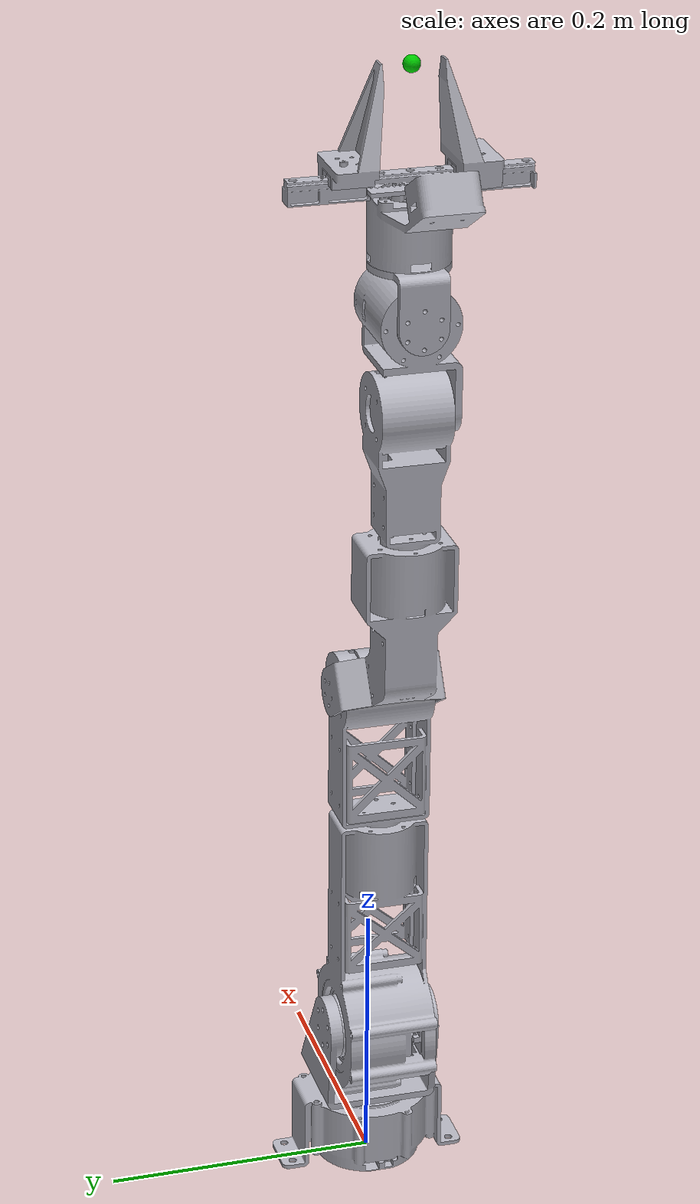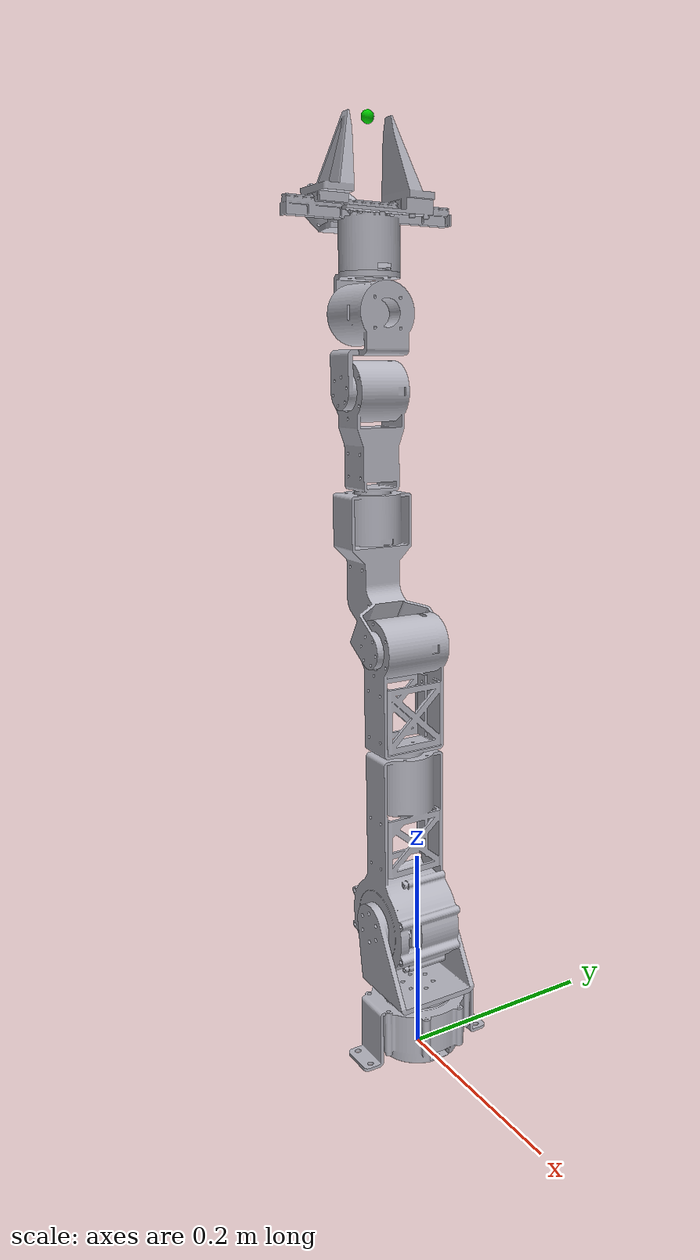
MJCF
<?xml version="1.0" encoding="utf-8"?>
<!-- MJCF model generated from robot.urdf. All distances are in metres and angles in radians. -->
<mujoco model="h1arm_gripper">
  <!-- URDF rpy uses fixed-axis XYZ rotations. -->
  <compiler angle="radian" eulerseq="XYZ" meshdir="meshes"/>
  <option timestep="0.002" gravity="0 0 -9.81" integrator="implicitfast"/>

  <default>
    <joint damping="1" armature="0.01" limited="true"/>
    <geom type="mesh" contype="1" conaffinity="1" friction="0.8 0.01 0.001" rgba="0.72 0.72 0.76 1"/>
    <position forcelimited="true"/>
  </default>

  <asset>
    <mesh name="base_link_mesh" file="base_link.stl"/>
    <mesh name="Link_1_mesh" file="Link_1.stl"/>
    <mesh name="Link_2_mesh" file="Link_2.stl"/>
    <mesh name="Link_3_mesh" file="Link_3.stl"/>
    <mesh name="Link_4_mesh" file="Link_4.stl"/>
    <mesh name="Link_5_mesh" file="Link_5.stl"/>
    <mesh name="Link_6_mesh" file="Link_6.stl"/>
    <mesh name="Link_7_mesh" file="Link_7.stl"/>
    <mesh name="Link_ee_mesh" file="Link_ee.stl"/>
    <mesh name="Link_12_mesh" file="Link_12.stl"/>
    <mesh name="Link_13_mesh" file="Link_13.stl"/>
  </asset>

  <worldbody>
    <body name="base_link">
      <inertial pos="0.0000558 -0.00005184 0.03162308" mass="0.69162878"
                fullinertia="0.0008996 0.00061988 0.00106115 0.00000037 0.0000008 -0.0000044"/>
      <geom mesh="base_link_mesh"/>
      <body name="Link_1" pos="0 -0.00001092 0.0566">
        <joint name="Joint_1" type="hinge" axis="0 0 1" range="-3.14159 3.14159"/>
        <inertial pos="-0.00939786 0.0000704 0.03350522" mass="0.48230711"
                  fullinertia="0.00091496 0.00058896 0.00073282 0.00000048 0.00012968 -0.0000012"/>
        <geom mesh="Link_1_mesh"/>
        <body name="Link_2" pos="-0.0235 0.0325 0.069" euler="-1.57079633 0 0">
          <joint name="Joint_2" type="hinge" axis="0 0 1" range="-1.571 1.571"/>
          <inertial pos="0.00000532 -0.06379929 -0.03408965" mass="1.94611811"
                    fullinertia="0.01118348 0.0017217 0.01120132 0.00000311 0.00000061 0.00019674"/>
          <geom mesh="Link_2_mesh"/>
          <body name="Link_3" pos="-0.00000018 -0.173 -0.03249939" euler="1.57079633 0 0">
            <joint name="Joint_3" type="hinge" axis="0 0 1" range="-3.14159 3.14159"/>
            <inertial pos="-0.00002259 -0.00043766 0.09074299" mass="1.01676546"
                      fullinertia="0.00170773 0.00150816 0.00061728 0.00000044 0.00000039 0.00000773"/>
            <geom mesh="Link_3_mesh"/>
            <body name="Link_4" pos="0 -0.031 0.108" euler="1.57079633 0 0">
              <joint name="Joint_4" type="hinge" axis="0 0 1" range="-3.14159 3.14159"/>
              <inertial pos="-0.05223196 0.08041667 -0.03084671" mass="1.31493568"
                        fullinertia="0.00256753 0.00083187 0.00261887 0.00044865 -0.00000907 0.00001387"/>
              <geom mesh="Link_4_mesh"/>
              <body name="Link_5" pos="-0.0570187 0.13799997 -0.031" euler="-1.57079633 0 0">
                <joint name="Joint_5" type="hinge" axis="0 0 1" range="-3.14159 3.14159"/>
                <inertial pos="-0.00002277 -0.00013572 0.07326344" mass="1.03123423"
                          fullinertia="0.00138155 0.00137365 0.00036176 0.00000043 0.00000058 -0.00001051"/>
                <geom mesh="Link_5_mesh"/>
                <body name="Link_6" pos="0 -0.0235 0.098" euler="1.57079633 0 0">
                  <joint name="Joint_6" type="hinge" axis="0 0 1" range="-3.14159 3.14159"/>
                  <inertial pos="-0.00011233 0.06329954 -0.02121872" mass="0.888259"
                            fullinertia="0.00068987 0.00050599 0.00074389 0.00002087 -0.00000023 0.00010841"/>
                  <geom mesh="Link_6_mesh"/>
                  <body name="Link_7" pos="-0.0325 0.07046661 -0.0235" euler="-1.57079633 0 1.57079633">
                    <joint name="Joint_7" type="hinge" axis="0 0 1" range="-3.14159 3.14159"/>
                    <inertial pos="0.02413322 0 -0.01539933" mass="0.09346317"
                              fullinertia="0.0000561 0.00006109 0.00003789 0 0.00001734 0"/>
                    <geom mesh="Link_7_mesh"/>
                    <body name="Link_ee" pos="0.037 0 -0.0325" euler="-1.57079633 0 -1.57079633">
                      <inertial pos="-0.00003041 0.00463951 -0.10312018" mass="2.29846423"
                                fullinertia="0.06158132 0.05976071 0.00306785 0.00000481 -0.00000279 0.008958"/>
                      <geom mesh="Link_ee_mesh"/>
                      <body name="Link_tool" pos="0 0 0.134" euler="0 -1.57 1.57079633">
                        <site name="tool_center" type="sphere" size="0.006" rgba="0 0.8 0 1"/>
                        <body name="Link_12" pos="-0.06248011 -0.02843143 -0.02504976" euler="1.57 -0.00079633 0">
                          <joint name="gripper1" type="slide" axis="0 0 1" range="-0.021 0.04" damping="5" armature="0.001"/>
                          <inertial pos="0.00287554 0.02840234 0.00516111" mass="0.11778883"
                                    fullinertia="0.00005212 0.00007215 0.00006361 0.00000733 0.00000375 0.00000348"/>
                          <geom mesh="Link_12_mesh"/>
                        </body>
                        <body name="Link_13" pos="-0.06251993 0.02843143 0.02495022" euler="1.57 0.00079633 3.14159265">
                          <joint name="gipper2" type="slide" axis="0 0 1" range="-0.021 0.04" damping="5" armature="0.001"/>
                          <inertial pos="-0.00276631 -0.02843533 0.00553903" mass="0.11903541"
                                    fullinertia="0.00005105 0.00007105 0.00006395 0.00000747 -0.00000485 -0.00000314"/>
                          <geom mesh="Link_13_mesh"/>
                        </body>
                      </body>
                    </body>
                  </body>
                </body>
              </body>
            </body>
          </body>
        </body>
      </body>
    </body>
  </worldbody>

  <!-- The two opposing fingers move by the same joint coordinate. -->
  <equality>
    <joint joint1="gripper1" joint2="gipper2" polycoef="0 1 0 0 0"/>
  </equality>

  <actuator>
    <position name="Joint_1_position" joint="Joint_1" ctrlrange="-3.14159 3.14159" kp="100" forcerange="-30 30"/>
    <position name="Joint_2_position" joint="Joint_2" ctrlrange="-1.571 1.571" kp="350" forcerange="-80 80"/>
    <position name="Joint_3_position" joint="Joint_3" ctrlrange="-3.14159 3.14159" kp="250" forcerange="-45 45"/>
    <position name="Joint_4_position" joint="Joint_4" ctrlrange="-3.14159 3.14159" kp="250" forcerange="-45 45"/>
    <position name="Joint_5_position" joint="Joint_5" ctrlrange="-3.14159 3.14159" kp="150" forcerange="-20 20"/>
    <position name="Joint_6_position" joint="Joint_6" ctrlrange="-3.14159 3.14159" kp="150" forcerange="-20 20"/>
    <position name="Joint_7_position" joint="Joint_7" ctrlrange="-3.14159 3.14159" kp="100" forcerange="-15 15"/>
    <position name="gripper_position" joint="gripper1" ctrlrange="-0.021 0.04" kp="500" forcerange="-100 100"/>
  </actuator>
</mujoco>
